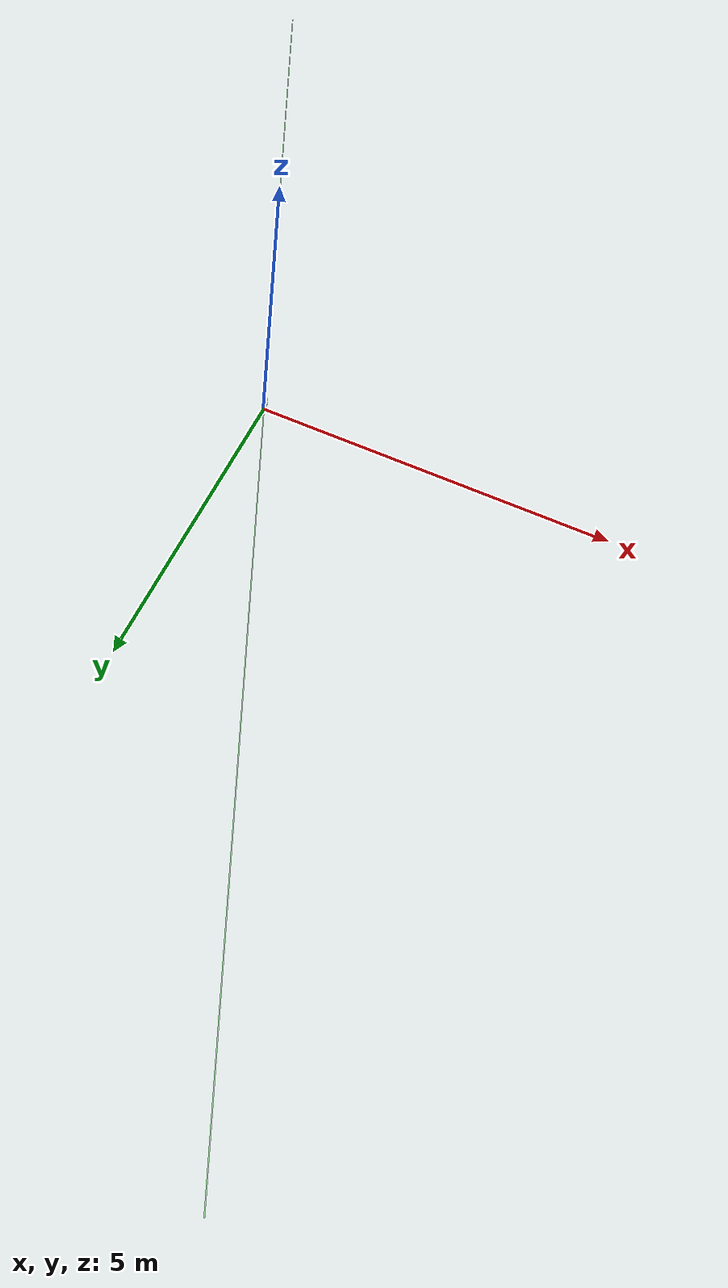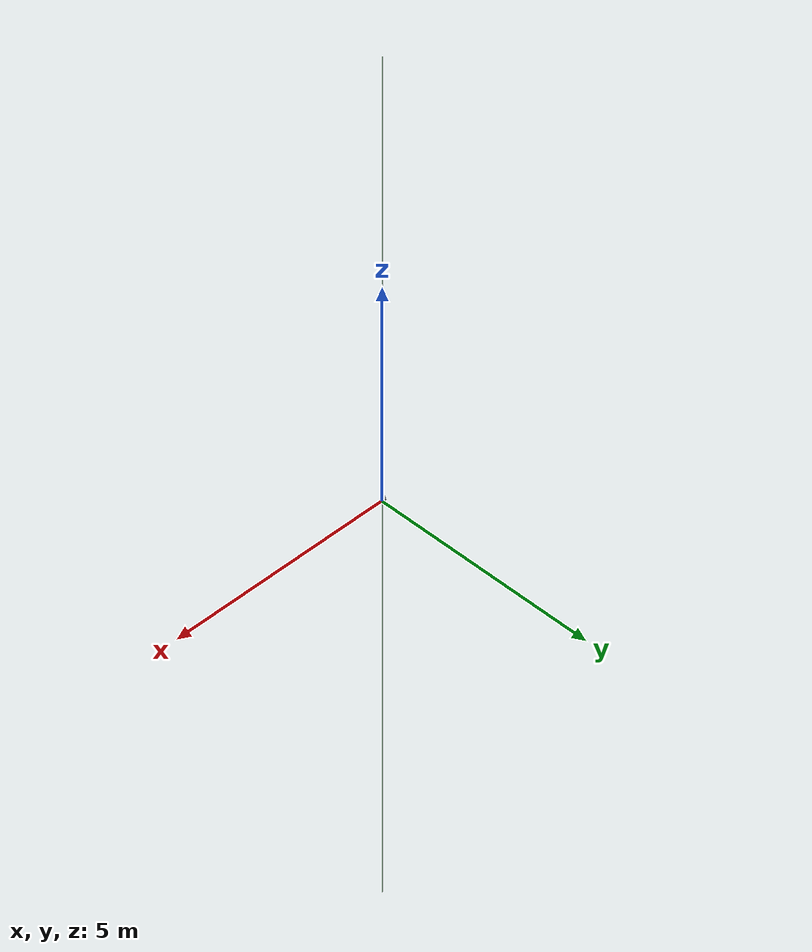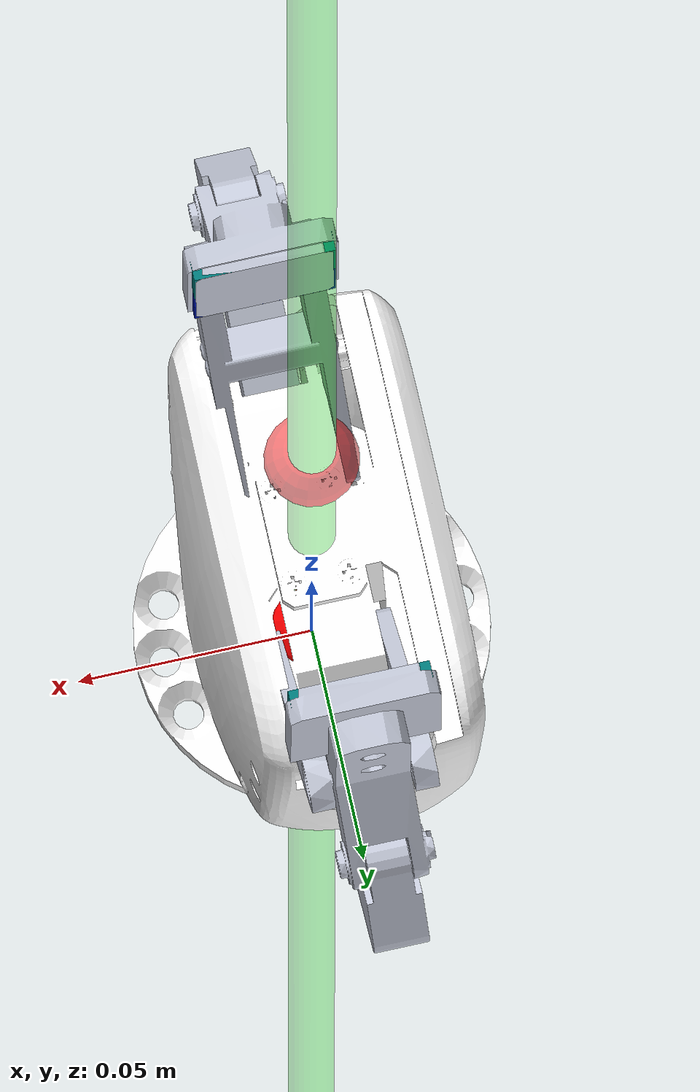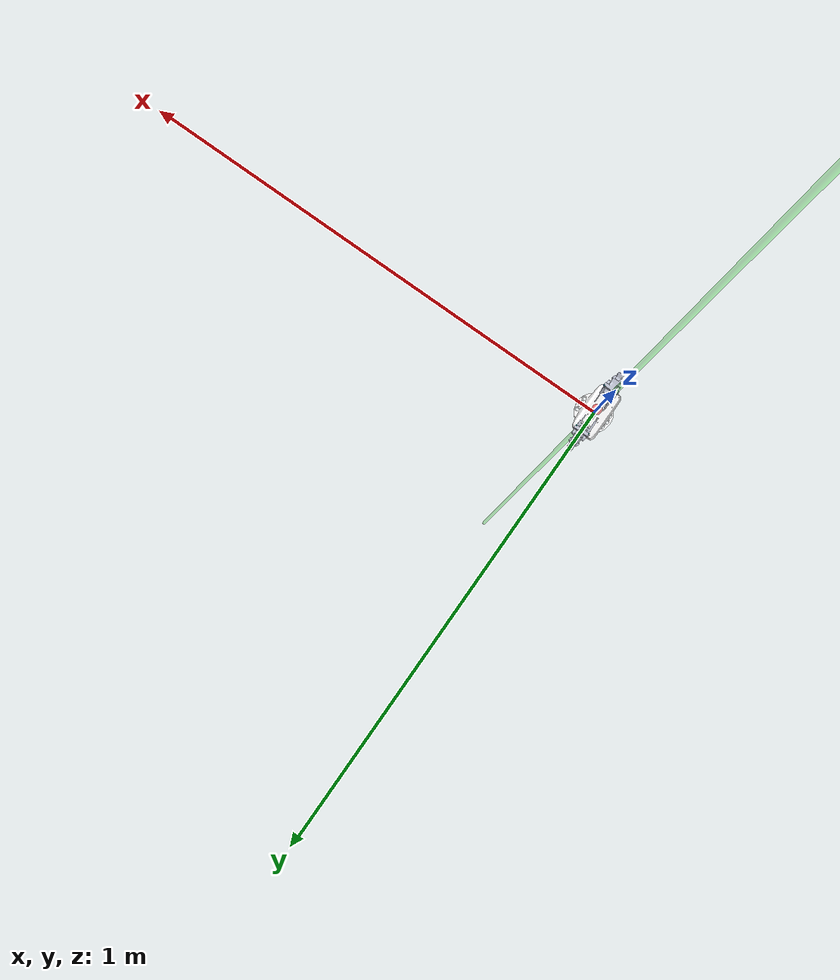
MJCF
<mujoco model="xarm_gripper_model">
  <asset>
    <mesh name="xarm_gripper_base_link" file="meshes/gripper/xarm/base_link.stl" />
    <mesh name="xarm_gripper_left_outer_knuckle" file="meshes/gripper/xarm/left_outer_knuckle.stl" />
    <mesh name="xarm_gripper_left_finger" file="meshes/gripper/xarm/left_finger.stl" />
    <mesh name="xarm_gripper_left_inner_knuckle" file="meshes/gripper/xarm/left_inner_knuckle.stl" />
    <mesh name="xarm_gripper_right_outer_knuckle" file="meshes/gripper/xarm/right_outer_knuckle.stl" />
    <mesh name="xarm_gripper_right_finger" file="meshes/gripper/xarm/right_finger.stl" />
    <mesh name="xarm_gripper_right_inner_knuckle" file="meshes/gripper/xarm/right_inner_knuckle.stl" />
  </asset>

  <worldbody>
    <body name="xarm_gripper_base_link" pos="0 0 0">
      <site name="ft_frame" pos="0 0 0" size="0.01 0.01 0.01" rgba="1 0 0 1" type="sphere" group="1" />
      <body name="eef" pos="0 0 0.172" quat="0.707105 0 0 -0.707105">
        <site name="grip_site" pos="0 0 0" size="0.01 0.01 0.01" rgba="1 0 0 0.5" type="sphere" group="1" />
        <site name="ee_x" pos="0.1 0 0" size="0.005 .1" quat="0.707105 0 0.707108 0" rgba="1 0 0 0" type="cylinder" group="1" />
        <site name="ee_y" pos="0 0.1 0" size="0.005 .1" quat="0.707105 0.707108 0 0" rgba="0 1 0 0" type="cylinder" group="1" />
        <site name="ee_z" pos="0 0 0.1" size="0.005 .1" quat="1 0 0 0" rgba="0 0 1 0" type="cylinder" group="1" />
        <site name="grip_site_cylinder" pos="0 0 0" size="0.005 10" rgba="0 1 0 0.3" type="cylinder" group="1" />
      </body>
      <inertial pos="-0.00065489 -0.0018497 0.048028" mass="0.54156"
                diaginertia="0.00047106 0.00033072 0.00025642" />
      <geom type="mesh" contype="0" conaffinity="0" group="1" rgba="1 1 1 1" name="base_link_visual" mesh="xarm_gripper_base_link" />
      <geom type="mesh" group="0" rgba="1 1 1 1" name="base_link_collision" mesh="xarm_gripper_base_link" solref="0.01 0.25" />

      <body name="left_outer_knuckle" pos="0 0.035 0.059098">
        <inertial pos="0 0.021559 0.015181" mass="0.033618"
                  diaginertia="0.000019111 0.0000066256 0.000013185" />
        <joint name="left_driver_joint" axis="1 0 0" limited="true" range="0 0.85" armature="0.005" damping="0.1" frictionloss="1" solreflimit="0.005 1" />
        <geom type="mesh" contype="0" conaffinity="0" group="1" rgba="0.78 0.80 0.86 1" name="left_outer_knuckle_visual" mesh="xarm_gripper_left_outer_knuckle" />
        <geom type="mesh" group="0" rgba="0.78 0.80 0.86 1" name="left_outer_knuckle_collision" mesh="xarm_gripper_left_outer_knuckle" solref="0.01 0.25" />
        <body name="left_finger" pos="0 0.035465 0.042039">
          <inertial pos="0 -0.016413 0.029258" mass="0.048304"
                    diaginertia="0.000017493 0.000017225 0.0000051466" />
          <joint name="left_finger_joint" axis="-1 0 0" limited="true" range="0 0.85" armature="0.1" damping="0.01" frictionloss="1" solreflimit="0.005 1" />
          <geom type="mesh" contype="0" conaffinity="0" group="1" rgba="0.78 0.80 0.86 1" name="left_finger_visual" mesh="xarm_gripper_left_finger" />
          <geom size="0.015 0.002 0.0095" pos="0 -0.024003 0.032" type="box" group="0" name="left_finger_pad_1" friction="0.7" solimp="0.95 0.99 0.001" solref="0.004 1" mass="0" priority="1" rgba="0.0 0.1 0.7 1" />
          <geom size="0.015 0.002 0.0095" pos="0 -0.024003 0.050" type="box" group="0" name="left_finger_pad_2" friction="0.6" solimp="0.95 0.99 0.001" solref="0.004 1" mass="0" priority="1" rgba="0.0 0.5 0.5 1" />
        </body>
      </body>

      <body name="left_inner_knuckle" pos="0 0.02 0.074098">
        <inertial pos="0 0.022047 0.026133" mass="0.023013"
                  diaginertia="0.0000060949 0.0000060196 0.0000050786" />
        <joint name="left_inner_knuckle_joint" axis="1 0 0" limited="true" range="0 0.85" armature="0.1" stiffness="0.05" springref="2.62" damping="0.00125" frictionloss="1" solreflimit="0.005 1" />
        <geom type="mesh" contype="0" conaffinity="0" group="1" rgba="0.78 0.80 0.86 1" name="left_inner_knuckle_visual" mesh="xarm_gripper_left_inner_knuckle" />
        <geom type="mesh" group="0" rgba="0.78 0.80 0.86 1" name="left_inner_knuckle_collision" mesh="xarm_gripper_left_inner_knuckle" solref="0.01 0.25" />
      </body>

      <body name="right_outer_knuckle" pos="0 -0.035 0.059098">
        <inertial pos="0 -0.021559 0.015181" mass="0.033618"
                  diaginertia="0.000019111 0.0000066256 0.000013185" />
        <joint name="right_driver_joint" axis="-1 0 0" limited="true" range="0 0.85" armature="0.005" damping="0.1" frictionloss="1" solreflimit="0.005 1" />
        <geom type="mesh" contype="0" conaffinity="0" group="1" rgba="0.78 0.80 0.86 1" name="right_outer_knuckle_visual" mesh="xarm_gripper_right_outer_knuckle" />
        <geom type="mesh" group="0" rgba="0.78 0.80 0.86 1" name="right_outer_knuckle_collision" mesh="xarm_gripper_right_outer_knuckle" solref="0.01 0.25" />
        <body name="right_finger" pos="0 -0.035465 0.042039">
          <inertial pos="0 0.016413 0.029258" mass="0.048304"
                    diaginertia="0.000017493 0.000017225 0.0000051466" />
          <joint name="right_finger_joint" axis="1 0 0" limited="true" range="0 0.85" armature="0.1" damping="0.01" frictionloss="1" solreflimit="0.005 1" />
          <geom type="mesh" contype="0" conaffinity="0" group="1" rgba="0.78 0.80 0.86 1" name="right_finger_visual" mesh="xarm_gripper_right_finger" />
          <geom size="0.015 0.002 0.0095" pos="0 0.024003 0.032" type="box" group="0" name="right_finger_pad_1" friction="0.7" solimp="0.95 0.99 0.001" solref="0.004 1" mass="0" priority="1" rgba="0.0 0.1 0.7 1" />
          <geom size="0.015 0.002 0.0095" pos="0 0.024003 0.050" type="box" group="0" name="right_finger_pad_2" friction="0.6" solimp="0.95 0.99 0.001" solref="0.004 1" mass="0" priority="1" rgba="0.0 0.5 0.5 1" />
        </body>
      </body>

      <body name="right_inner_knuckle" pos="0 -0.02 0.074098">
        <inertial pos="0 -0.022047 0.026133" mass="0.023013"
                  diaginertia="0.0000060949 0.0000060196 0.0000050786" />
        <joint name="right_inner_knuckle_joint" axis="-1 0 0" limited="true" range="0 0.85" armature="0.1" stiffness="0.05" springref="2.62" damping="0.00125" frictionloss="1" solreflimit="0.005 1" />
        <geom type="mesh" contype="0" conaffinity="0" group="1" rgba="0.78 0.80 0.86 1" name="right_inner_knuckle_visual" mesh="xarm_gripper_right_inner_knuckle" />
        <geom type="mesh" group="0" rgba="0.78 0.80 0.86 1" name="right_inner_knuckle_collision" mesh="xarm_gripper_right_inner_knuckle" solref="0.01 0.25" />
      </body>
    </body>
  </worldbody>

  <contact>
    <exclude body1="right_inner_knuckle" body2="right_outer_knuckle" />
    <exclude body1="right_inner_knuckle" body2="right_finger" />
    <exclude body1="left_inner_knuckle" body2="left_outer_knuckle" />
    <exclude body1="left_inner_knuckle" body2="left_finger" />
    <exclude body1="left_inner_knuckle" body2="xarm_gripper_base_link" />
    <exclude body1="right_inner_knuckle" body2="xarm_gripper_base_link" />
    <exclude body1="left_outer_knuckle" body2="xarm_gripper_base_link" />
    <exclude body1="right_outer_knuckle" body2="xarm_gripper_base_link" />
  </contact>

  <tendon>
    <fixed name="xarm_gripper_split">
      <joint joint="right_driver_joint" coef="0.5" />
      <joint joint="left_driver_joint" coef="0.5" />
    </fixed>
  </tendon>

  <equality>
    <connect name="right_fourbar_loop" anchor="0 0.015 0.015" body1="right_finger" body2="right_inner_knuckle" solref="0.005 1" />
    <connect name="left_fourbar_loop" anchor="0 -0.015 0.015" body1="left_finger" body2="left_inner_knuckle" solref="0.005 1" />
    <joint name="driver_sync" joint1="left_driver_joint" joint2="right_driver_joint" polycoef="0 1 0 0 0" solref="0.005 1" />
  </equality>

  <actuator>
    <position name="finger" ctrllimited="true" kp="35" tendon="xarm_gripper_split" ctrlrange="0 0.85" />
  </actuator>

  <sensor>
    <force name="force_ee" site="ft_frame" />
    <torque name="torque_ee" site="ft_frame" />
  </sensor>
</mujoco>
